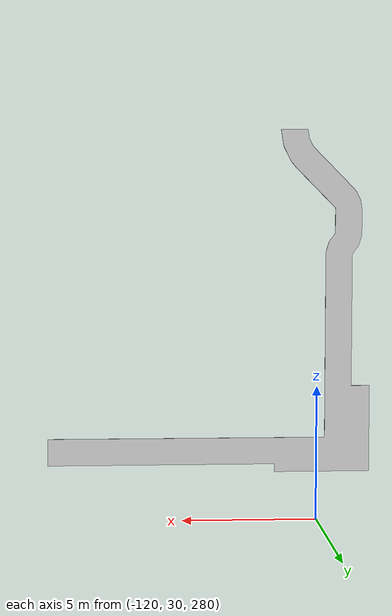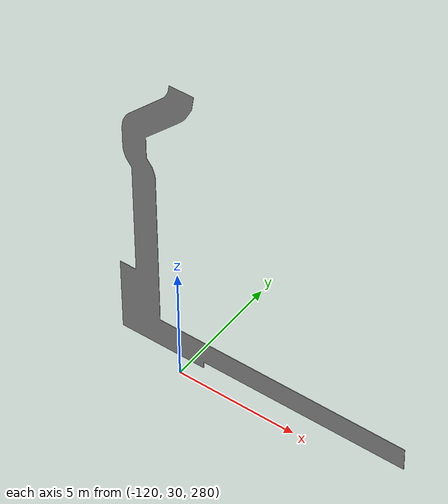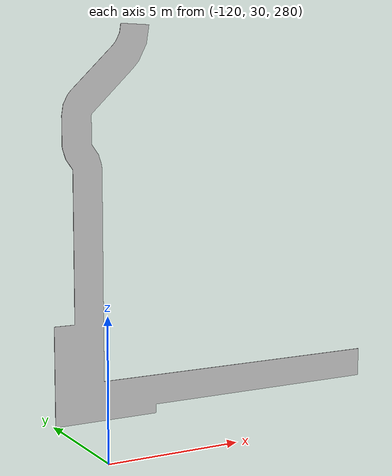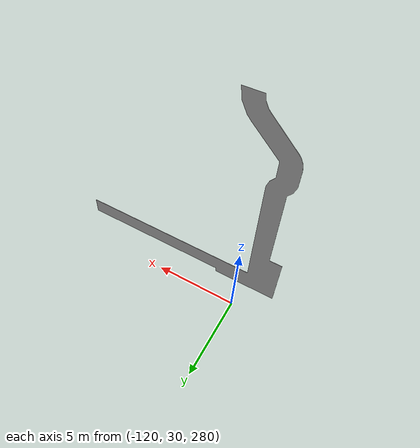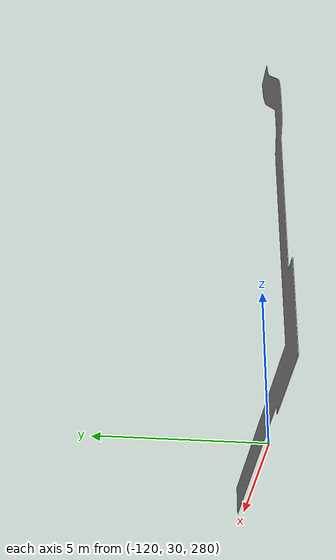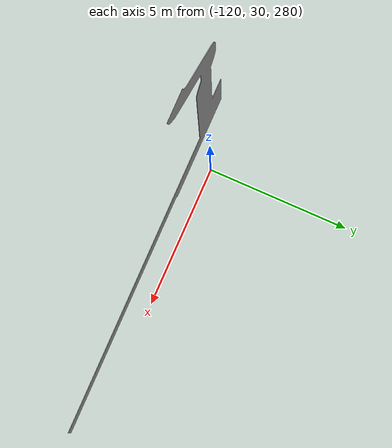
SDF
<?xml version='1.0'?>
<sdf version='1.7'>
    <model name='huldra-small-area-walkway'>
        <static>true</static>
        <link name='link0'>
            <visual name="visual0">
                <pose>0 0 0 0 0 0</pose>
                <geometry>
                    <mesh>
                        <uri>model://huldra-models/huldra-small-area-walkway/meshes/huldra-small-area-walkway.obj</uri>
                    </mesh>
                </geometry>
            </visual>
        </link>
    </model>
</sdf>
